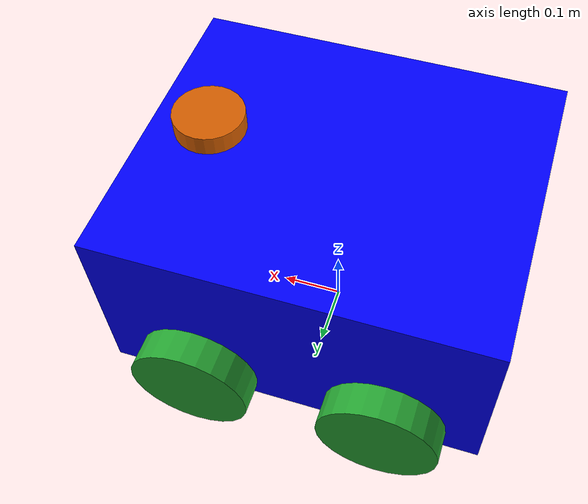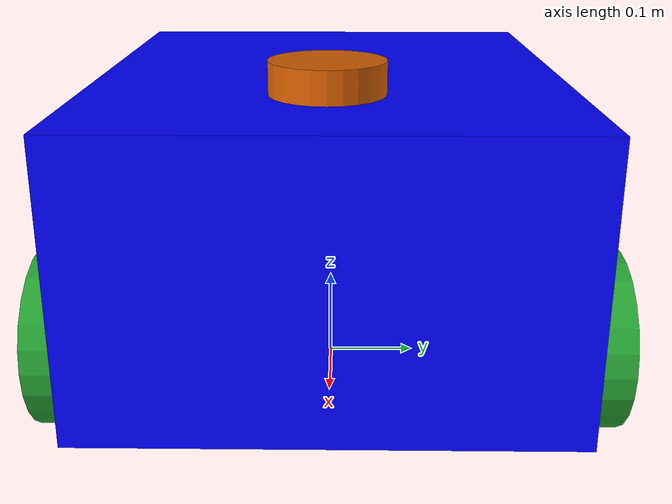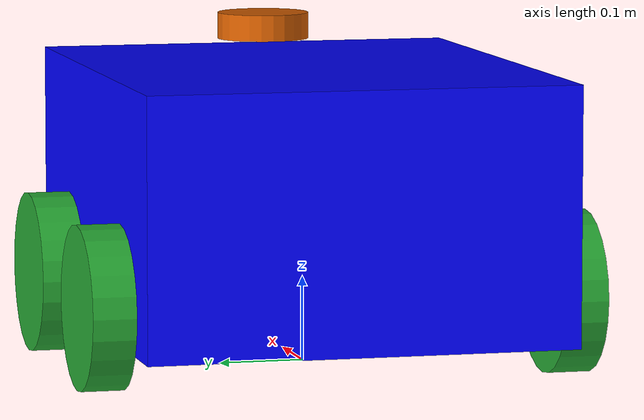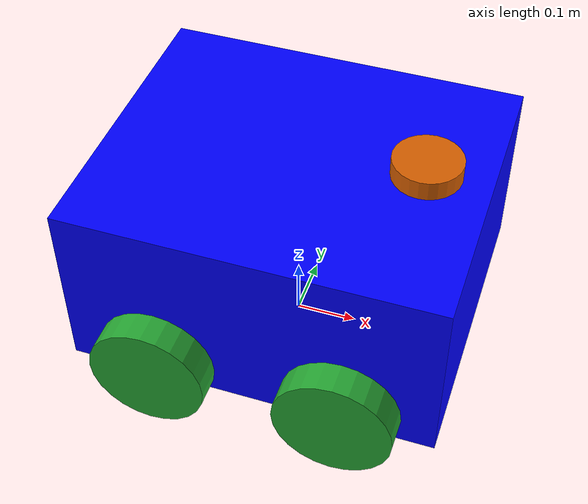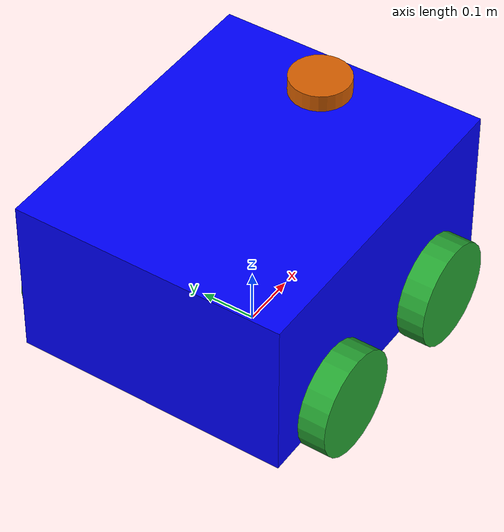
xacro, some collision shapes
<?xml version='1.0'?>

<robot name="gossa" xmlns:xacro="http://www.ros.org/wiki/xacro">
	<xacro:property name="robot_name" value="gossa" />
	<xacro:property name="robot_chassis_mass" value="10"/>
	<xacro:property name="robot_chassis_length" value="0.2"/>
	<xacro:property name="robot_chassis_radius" value="0.25"/>

	<xacro:property name="robot_wheel_mass" value="1"/>
	<xacro:property name="robot_wheel_length" value="0.05"/>
	<xacro:property name="robot_wheel_radius" value="0.095"/>

	<xacro:property name="rplidar_mass" value="1e-5"/>

	<!-- Make Chassis of Bot -->
	<link name="chassis">
		<pose>0 0 0 0 0 0</pose>

		<inertial>
			<mass value="${robot_chassis_mass}"/>
      		<origin xyz="0.0 0 0" rpy=" 0 0 0"/>

      		<inertia
      			ixx="0.147116667" ixy="0" ixz="0"
      			iyy="0.334951167" iyz="0"
      			izz="0.3978345"
      		/>
		</inertial>

		<collision name="collision">
			<origin xyz="0 0 0.2" rpy=" 0 0 0"/>
			<geometry>
				<box size="0.6 0.5 0.3"/>
			</geometry>
		</collision>

		<visual name="chassis_visual">
			<origin xyz="0 0 0.2" rpy=" 0 0 0"/>
			<geometry>
				<box size="0.6 0.5 0.3"/>
			</geometry>
			<material name="blue">
			  <color rgba="0.0 0.0 1.0 1.0"/>
			</material>
		</visual>

	</link>

	<!-- Right Wheel Back -->
	<link name="right_wheel_back">
		<inertial>
			<mass value="${robot_wheel_mass}"/>
			<origin xyz="0 0 0" rpy="0 1.5707 1.5707"/>
			<inertia
				ixx="0.1" ixy="0.0" ixz="0.0"
				iyy="0.1" iyz="0.0"
				izz="0.1"
			/>
		</inertial>

		<visual>
			<origin xyz="0 0 0" rpy="0 1.5707 1.5707"/>
			<geometry>
				<cylinder radius="${robot_wheel_radius}" length="${robot_wheel_length}"/>
			</geometry>
		</visual>

		<collision>
			<origin xyz="0 0 0" rpy="0 1.5707 1.5707"/>
			<geometry>
				<cylinder radius="${robot_wheel_radius}" length="${robot_wheel_length}"/>
			</geometry>
		</collision>

	</link>

	<!-- Right Wheel Front-->
	<link name="right_wheel_front">
		<inertial>
			<mass value="${robot_wheel_mass}"/>
			<origin xyz="0 0 0" rpy="0 1.5707 1.5707"/>
			<inertia
				ixx="0.1" ixy="0.0" ixz="0.0"
				iyy="0.1" iyz="0.0"
				izz="0.1"
			/>
		</inertial>

		<visual>
			<origin xyz="0 0 0" rpy="0 1.5707 1.5707"/>
			<geometry>
				<cylinder radius="${robot_wheel_radius}" length="${robot_wheel_length}"/>
			</geometry>
		</visual>

		<collision>
			<origin xyz="0 0 0" rpy="0 1.5707 1.5707"/>
			<geometry>
				<cylinder radius="${robot_wheel_radius}" length="${robot_wheel_length}"/>
			</geometry>
		</collision>

	</link>

	<!-- Left wheel Back-->
	<link name="left_wheel_back">
		<inertial>
			<mass value="${robot_wheel_mass}"/>
			<origin xyz="0 0 0" rpy="0 1.5707 1.5707"/>
			<inertia
				ixx="0.1" ixy="0.0" ixz="0.0"
				iyy="0.1" iyz="0.0"
				izz="0.1"
			/>
		</inertial>

		<visual>
			<origin xyz="0 0 0" rpy="0 1.5707 1.5707"/>
			<geometry>
				<cylinder radius="${robot_wheel_radius}" length="${robot_wheel_length}"/>
			</geometry>
		</visual>

		<collision>
			<origin xyz="0 0 0" rpy="0 1.5707 1.5707"/>
			<geometry>
				<cylinder radius="${robot_wheel_radius}" length="${robot_wheel_length}"/>
			</geometry>
		</collision>

	</link>

	<!-- Left wheel Front-->
	<link name="left_wheel_front">
		<inertial>
			<mass value="${robot_wheel_mass}"/>
			<origin xyz="0 0 0" rpy="0 1.5707 1.5707"/>
			<inertia
				ixx="0.1" ixy="0.0" ixz="0.0"
				iyy="0.1" iyz="0.0"
				izz="0.1"
			/>
		</inertial>

		<visual>
			<origin xyz="0 0 0" rpy="0 1.5707 1.5707"/>
			<geometry>
				<cylinder radius="${robot_wheel_radius}" length="${robot_wheel_length}"/>
			</geometry>
		</visual>

		<collision>
			<origin xyz="0 0 0" rpy="0 1.5707 1.5707"/>
			<geometry>
				<cylinder radius="${robot_wheel_radius}" length="${robot_wheel_length}"/>
			</geometry>
		</collision>

	</link>

	<!-- Camera -->

	<!-- rplidar Lidar -->
	<link name="rplidar">
		<inertial>
			<mass value="${rplidar_mass}"/>
			<origin xyz="0 0 0" rpy="0 0 0"/>

			<inertia
		        ixx="1e-6" ixy="0.0" ixz="0.0"
		        iyy="1e-6" iyz="0.0"
		        izz="1e-6"
		      />
		</inertial>

		<visual>
			<origin xyz="0 0 0" rpy="0 0 0"/>
			<geometry>
				<mesh filename="package://turtlebot3_description/meshes/sensors/lds.stl" scale="0.001 0.001 0.001"/>
			</geometry>
		</visual>

		<collision>
			<origin xyz="0 0 0" rpy="0 0 0"/>
			<geometry>
				<cylinder length="0.0315" radius="0.055"/>
			</geometry>
		</collision>
	</link>

	<!-- Project center to the ground -->
	<link name="robot_footprint"></link>

	<!-- Define Joints -->

	<!-- Right Wheel Joint Back-->
	<joint type="continuous" name="right_wheel_hinge_back">
	    <origin xyz="-0.15 -0.275 0.095" rpy="0 0 0" />
	    <parent link="chassis"/>
	    <child link="right_wheel_back" />
	    <axis xyz="0 1 0" rpy="0 0 0" />
	    <limit effort="10000" velocity="1000" />
	    <dynamics damping="1.0" friction="1.0" />
	</joint>

	<!-- Right Wheel Joint Front-->
	<joint type="continuous" name="right_wheel_hinge_front">
	    <origin xyz="0.15 -0.275 0.095" rpy="0 0 0" />
	    <parent link="chassis"/>
	    <child link="right_wheel_front" />
	    <axis xyz="0 1 0" rpy="0 0 0" />
	    <limit effort="10000" velocity="1000" />
	    <dynamics damping="1.0" friction="1.0" />
	</joint>

	<!-- Left Wheel Joint Back-->
	<joint type="continuous" name="left_wheel_hinge_back">
	    <origin xyz="-0.15 0.275 0.095" rpy="0 0 0" />
	    <parent link="chassis"/>
	    <child link="left_wheel_back" />
	    <axis xyz="0 1 0" rpy="0 0 0" />
	    <limit effort="10000" velocity="1000" />
	    <dynamics damping="1.0" friction="1.0" />
	</joint>

	<!-- Left Wheel Joint Front-->
	<joint type="continuous" name="left_wheel_hinge_front">
	    <origin xyz="0.15 0.275 0.095" rpy="0 0 0" />
	    <parent link="chassis"/>
	    <child link="left_wheel_front" />
	    <axis xyz="0 1 0" rpy="0 0 0" />
	    <limit effort="10000" velocity="1000" />
	    <dynamics damping="1.0" friction="1.0" />
	</joint>

	<!-- rplidar Joint -->
	<joint name="rplidar_joint" type="fixed">
	    <origin xyz="0.2 0 0.38" rpy="0 0 0" />
	    <parent link="chassis"/>
	    <child link="rplidar" />
	    <axis xyz="0 1 0"/>
	</joint>

	<joint name="robot_footprint_joint" type="fixed">
		<origin xyz="0 0 0" rpy="0 0 0" />
		<parent link="robot_footprint"/>
		<child link="chassis" />
	</joint>

	<!-- Color of bot -->
	<gazebo reference="left_wheel_front">
		<material>Gazebo/Green</material>
		<kp>1000000.0</kp> <!-- kp and kd for rubber -->
		<kd>100.0</kd>
		<mu1>1.0</mu1>
		<mu2>1.0</mu2>
		<maxVel>1.0</maxVel>
		<minDepth>0.00</minDepth>
	</gazebo>

	<gazebo reference="left_wheel_back">
		<material>Gazebo/Green</material>
		<kp>1000000.0</kp> <!-- kp and kd for rubber -->
		<kd>100.0</kd>
		<mu1>1.0</mu1>
		<mu2>1.0</mu2>
		<maxVel>1.0</maxVel>
		<minDepth>0.00</minDepth>
	</gazebo>

	<gazebo reference="right_wheel_front">
		<material>Gazebo/Green</material>
		<kp>1000000.0</kp> <!-- kp and kd for rubber -->
		<kd>100.0</kd>
		<mu1>1.0</mu1>
		<mu2>1.0</mu2>
		<maxVel>1.0</maxVel>
		<minDepth>0.00</minDepth>
	</gazebo>
	<gazebo reference="right_wheel_back">
		<material>Gazebo/Green</material>
		<kp>1000000.0</kp> <!-- kp and kd for rubber -->
		<kd>100.0</kd>
		<mu1>1.0</mu1>
		<mu2>1.0</mu2>
		<maxVel>1.0</maxVel>
		<minDepth>0.00</minDepth>
	</gazebo>

	<gazebo reference="chassis">
		<material>Gazebo/Blue</material>
	</gazebo>

	<!-- Motor, Camera and Lidar Simulation -->

</robot>
